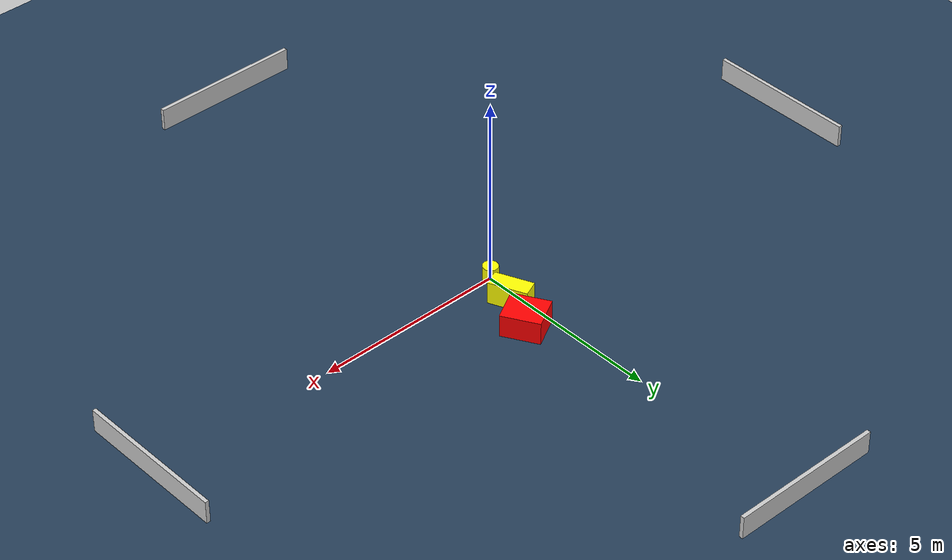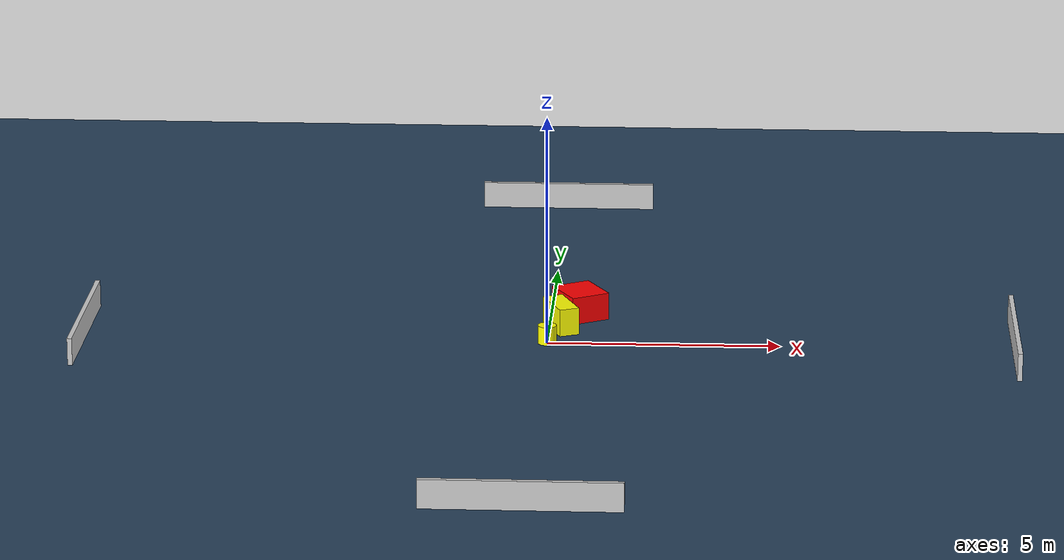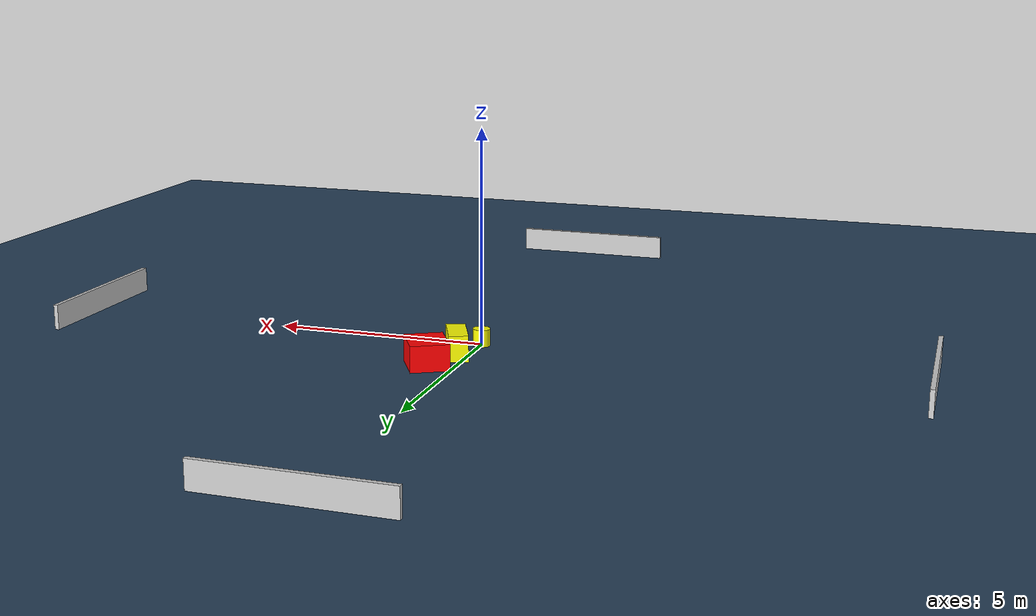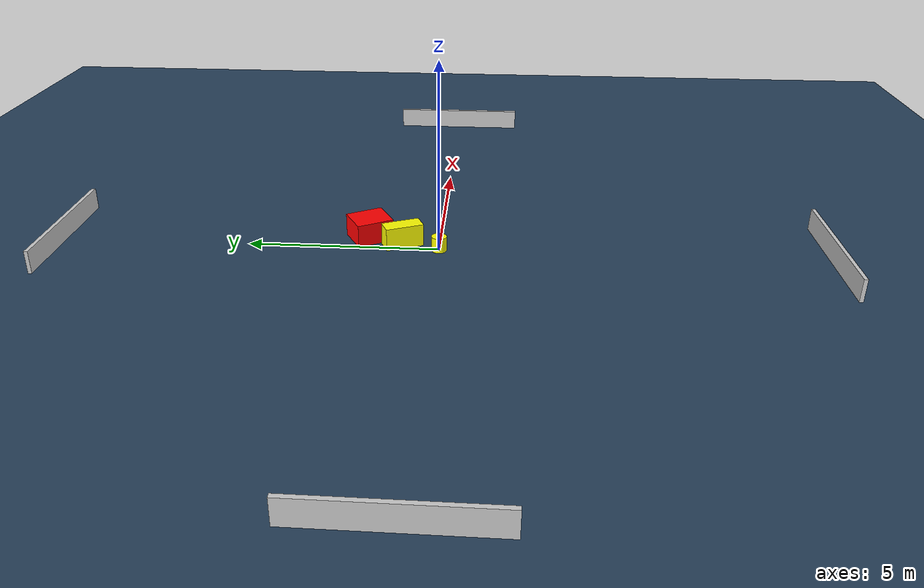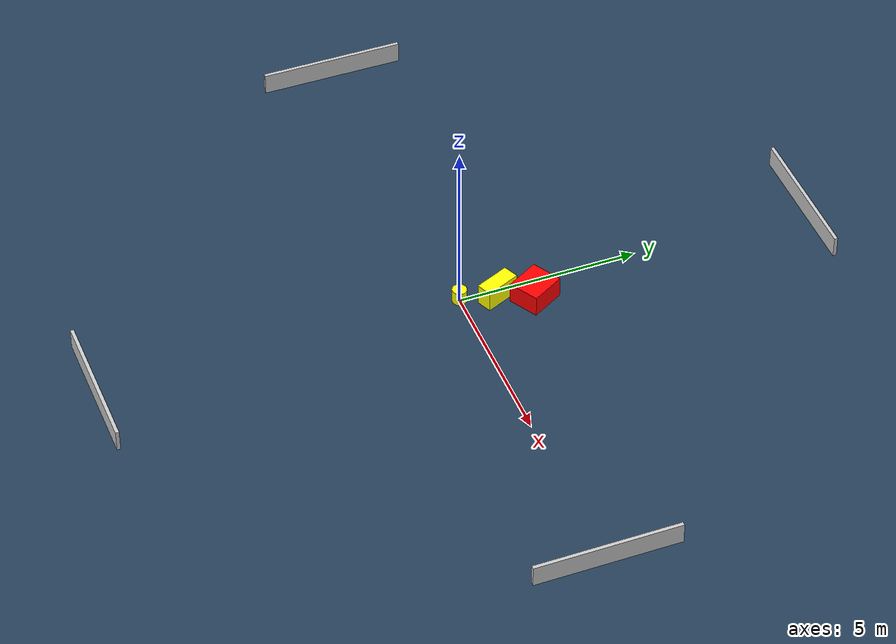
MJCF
<?xml version="1.0" ?>
<mujoco model="generated_environment">
  <option timestep="0.01" integrator="RK4" cone="elliptic"/>
  <default>
    <geom density="1"/>
  </default>
  <asset>
    <texture builtin="gradient" height="3072" name="skybox" rgb1="0.3 0.5 0.7" rgb2="0 0 0" type="skybox" width="512"/>
    <texture builtin="checker" height="300" name="groundplane" rgb1="0.2 0.3 0.4" rgb2="0.1 0.2 0.3" type="2d" width="300"/>
    <material name="groundplane" reflectance="0.2" texrepeat="5 5" texture="groundplane"/>
  </asset>
  <worldbody>
    <light dir="0 0 -1" directional="true" pos="0 0 1.5"/>
    <geom condim="3" friction="0.5 0.005 0.001" material="groundplane" name="floor" pos="0 0 0" size="0 0 0.05" type="plane"/>
    <body name="walls">
      <geom name="wall_1" condim="4" pos="-10.0 0.0 0.3" rgba="0.800000011920929 0.800000011920929 0.800000011920929 1.0" size="0.05 2.0 0.3" type="box"/>
      <geom name="wall_2" condim="4" pos="10.0 0.0 0.3" rgba="0.800000011920929 0.800000011920929 0.800000011920929 1.0" size="0.05 2.0 0.3" type="box"/>
      <geom name="wall_3" condim="4" pos="0.0 -10.0 0.3" rgba="0.800000011920929 0.800000011920929 0.800000011920929 1.0" size="2.0 0.05 0.3" type="box"/>
      <geom name="wall_4" condim="4" pos="0.0 10.0 0.3" rgba="0.800000011920929 0.800000011920929 0.800000011920929 1.0" size="2.0 0.05 0.3" type="box"/>
    </body>
    <body name="robot">
      <joint name="joint_x" type="slide" pos="0 0 0" axis="1 0 0"/>
      <joint name="joint_y" type="slide" pos="0 0 0" axis="0 1 0"/>
      <geom name="robot" type="cylinder" pos="0.0 0.0 0.2" size="0.2 0.2 0.0" mass="5.0" friction="1.0 0.005 0.0001" condim="4" rgba="1.0 1.0 0.0 1.0"/>
    </body>
    <body name="obstacle_1_movable">
      <geom name="obstacle_1_movable" condim="4" pos="0.25262371200141825 0.9766158729604982 0.3" euler="0 0 203.53422078722684" friction="0.0 0.005 0.001" rgba="1.0 1.0 0.0 1.0" size="0.22032882181053037 0.5060467450120667 0.3" type="box" mass="0.1"/>
      <joint type="free"/>
    </body>
    <body name="obstacle_2_static">
      <geom name="obstacle_2_static" condim="4" pos="0.6361481161540089 1.8887313065080344 0.3" euler="0 0 29.445292277162448" friction="0.0 0.005 0.001" rgba="1.0 0.0 0.0 1.0" size="0.43973552205724464 0.500316404053891 0.3" type="box"/>
    </body>
  </worldbody>
  <actuator>
    <motor name="actuator_x" joint="joint_x" gear="1" ctrlrange="-1 1"/>
    <motor name="actuator_y" joint="joint_y" gear="1" ctrlrange="-1 1"/>
  </actuator>
</mujoco>
